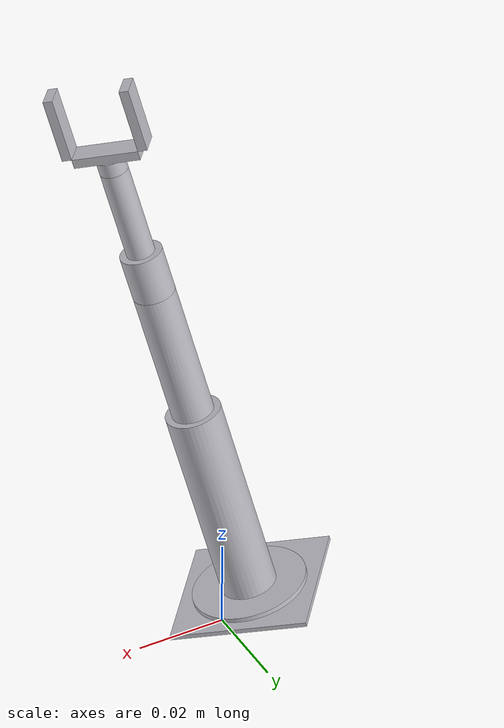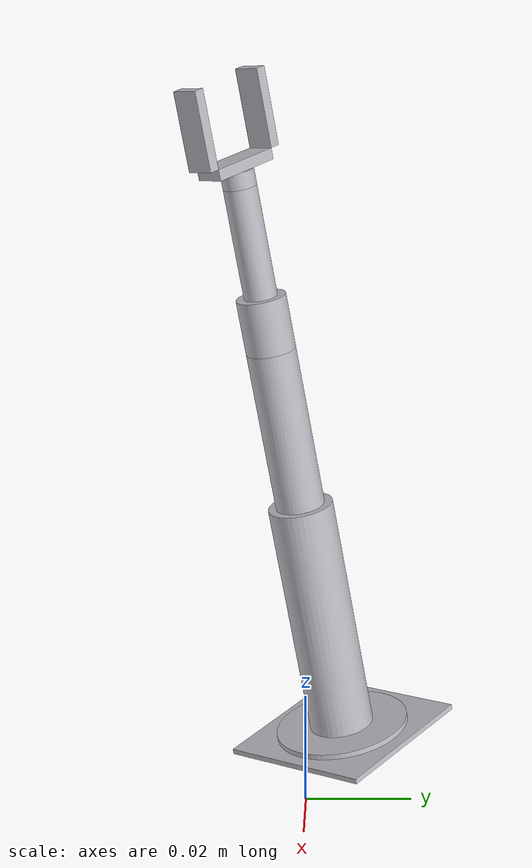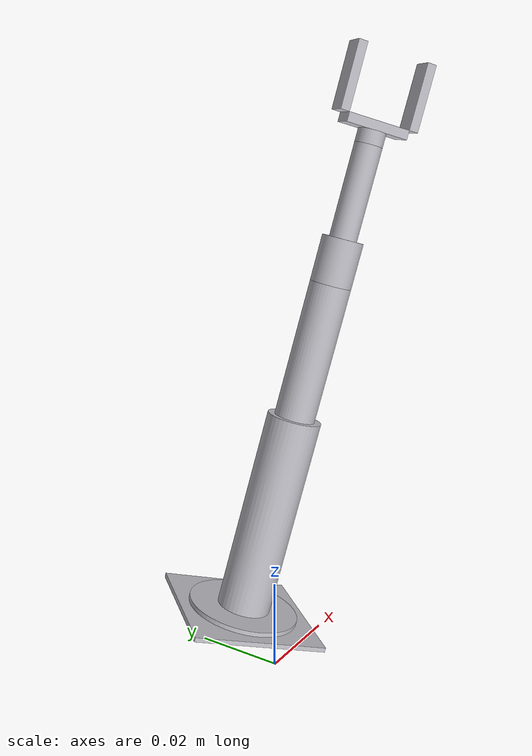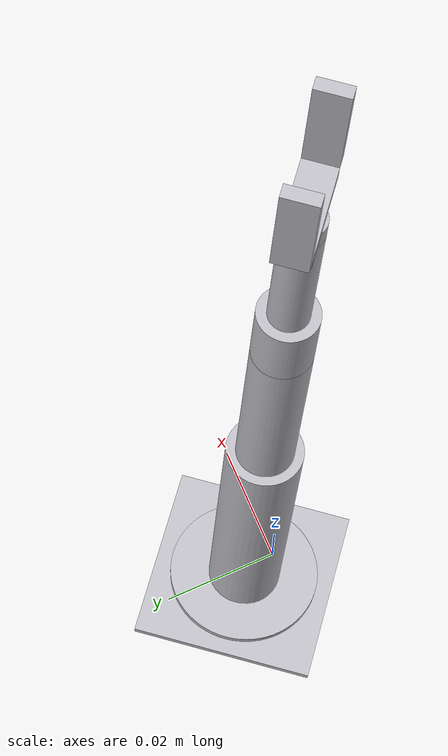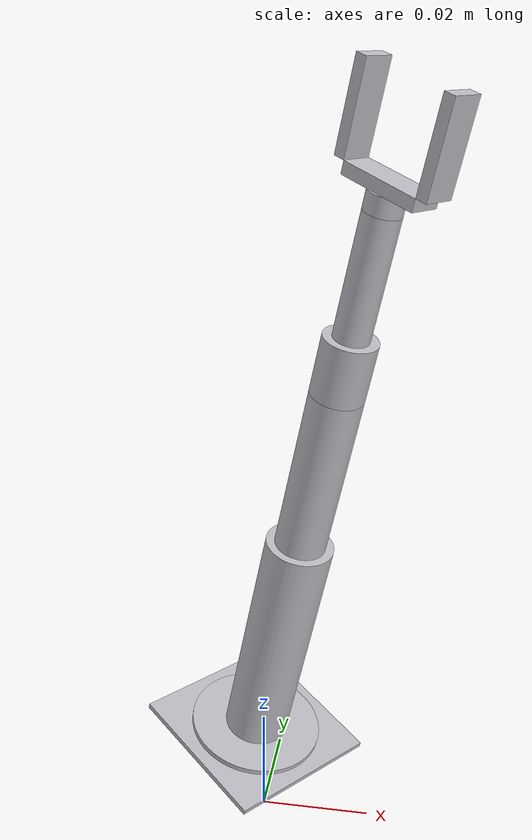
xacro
<?xml version="1.0" ?>
<robot name="urdf" xmlns:xacro="http://www.ros.org/wiki/xacro">

<xacro:include filename="$(find urdf_description)/urdf/materials.xacro" />
<xacro:include filename="$(find urdf_description)/urdf/urdf.trans" />
<xacro:include filename="$(find urdf_description)/urdf/urdf.gazebo" />
<link name="base_link">
  <inertial>
    <origin xyz="0.03985319259232302 0.14561530496668795 0.3276395309974256" rpy="0 0 0"/>
    <mass value="7.0649999999999995"/>
    <inertia ixx="0.055296" iyy="0.054528" izz="0.102244" ixy="-0.001826" iyz="-0.008538" ixz="0.010521"/>
  </inertial>
  <visual>
    <origin xyz="0 0 0" rpy="0 0 0"/>
    <geometry>
      <mesh filename="package://urdf_description/meshes/base_link.stl" scale="0.001 0.001 0.001"/>
    </geometry>
    <material name="silver"/>
  </visual>
  <collision>
    <origin xyz="0 0 0" rpy="0 0 0"/>
    <geometry>
      <mesh filename="package://urdf_description/meshes/base_link.stl" scale="0.001 0.001 0.001"/>
    </geometry>
  </collision>
</link>

<link name="Component3_2">
  <inertial>
    <origin xyz="0.001030908111271038 -0.0008368077931213969 0.004820590213709397" rpy="0 0 0"/>
    <mass value="3.85335973916873"/>
    <inertia ixx="0.015723" iyy="0.015505" izz="0.029045" ixy="-0.000518" iyz="-0.002423" ixz="0.002986"/>
  </inertial>
  <visual>
    <origin xyz="-0.040884 -0.144779 -0.33246" rpy="0 0 0"/>
    <geometry>
      <mesh filename="package://urdf_description/meshes/Component3_2.stl" scale="0.001 0.001 0.001"/>
    </geometry>
    <material name="silver"/>
  </visual>
  <collision>
    <origin xyz="-0.040884 -0.144779 -0.33246" rpy="0 0 0"/>
    <geometry>
      <mesh filename="package://urdf_description/meshes/Component3_2.stl" scale="0.001 0.001 0.001"/>
    </geometry>
  </collision>
</link>

<link name="Component4_2">
  <inertial>
    <origin xyz="0.046388365047072916 -0.03764540126873843 0.216923952188236" rpy="0 0 0"/>
    <mass value="39.951633775701396"/>
    <inertia ixx="0.683011" iyy="0.692274" izz="0.116908" ixy="0.022016" iyz="0.10295" ixz="-0.126861"/>
  </inertial>
  <visual>
    <origin xyz="-0.042946 -0.143106 -0.342101" rpy="0 0 0"/>
    <geometry>
      <mesh filename="package://urdf_description/meshes/Component4_2.stl" scale="0.001 0.001 0.001"/>
    </geometry>
    <material name="silver"/>
  </visual>
  <collision>
    <origin xyz="-0.042946 -0.143106 -0.342101" rpy="0 0 0"/>
    <geometry>
      <mesh filename="package://urdf_description/meshes/Component4_2.stl" scale="0.001 0.001 0.001"/>
    </geometry>
  </collision>
</link>

<link name="Component10_2">
  <inertial>
    <origin xyz="0.030925697007619074 -0.025097129761591994 0.144615672798877" rpy="0 0 0"/>
    <mass value="14.981862665888025"/>
    <inertia ixx="0.115495" iyy="0.117015" izz="0.022556" ixy="0.003614" iyz="0.016902" ixz="-0.020827"/>
  </inertial>
  <visual>
    <origin xyz="-0.135723 -0.067816 -0.775949" rpy="0 0 0"/>
    <geometry>
      <mesh filename="package://urdf_description/meshes/Component10_2.stl" scale="0.001 0.001 0.001"/>
    </geometry>
    <material name="silver"/>
  </visual>
  <collision>
    <origin xyz="-0.135723 -0.067816 -0.775949" rpy="0 0 0"/>
    <geometry>
      <mesh filename="package://urdf_description/meshes/Component10_2.stl" scale="0.001 0.001 0.001"/>
    </geometry>
  </collision>
</link>

<link name="Component11_2">
  <inertial>
    <origin xyz="0.010309007386577668 -0.008365384957780612 0.04820485712455169" rpy="0 0 0"/>
    <mass value="4.9939542219626745"/>
    <inertia ixx="0.00662" iyy="0.006644" izz="0.005172" ixy="5.6e-05" iyz="0.000263" ixz="-0.000325"/>
  </inertial>
  <visual>
    <origin xyz="-0.197574 -0.017622 -1.065181" rpy="0 0 0"/>
    <geometry>
      <mesh filename="package://urdf_description/meshes/Component11_2.stl" scale="0.001 0.001 0.001"/>
    </geometry>
    <material name="silver"/>
  </visual>
  <collision>
    <origin xyz="-0.197574 -0.017622 -1.065181" rpy="0 0 0"/>
    <geometry>
      <mesh filename="package://urdf_description/meshes/Component11_2.stl" scale="0.001 0.001 0.001"/>
    </geometry>
  </collision>
</link>

<link name="Component6_2">
  <inertial>
    <origin xyz="0.020616740170797204 -0.016731076354922807 0.09641074536880923" rpy="0 0 0"/>
    <mass value="4.439070419522377"/>
    <inertia ixx="0.015209" iyy="0.015409" izz="0.00297" ixy="0.000476" iyz="0.002226" ixz="-0.002743"/>
  </inertial>
  <visual>
    <origin xyz="-0.218192 -0.000891 -1.161591" rpy="0 0 0"/>
    <geometry>
      <mesh filename="package://urdf_description/meshes/Component6_2.stl" scale="0.001 0.001 0.001"/>
    </geometry>
    <material name="silver"/>
  </visual>
  <collision>
    <origin xyz="-0.218192 -0.000891 -1.161591" rpy="0 0 0"/>
    <geometry>
      <mesh filename="package://urdf_description/meshes/Component6_2.stl" scale="0.001 0.001 0.001"/>
    </geometry>
  </collision>
</link>

<link name="Component9_2">
  <inertial>
    <origin xyz="0.0030924686386986644 -0.0025098730927320748 0.014461926356074795" rpy="0 0 0"/>
    <mass value="0.6658605629283566"/>
    <inertia ixx="0.000204" iyy="0.000203" izz="0.000293" ixy="-3e-06" iyz="-1.6e-05" ixz="2e-05"/>
  </inertial>
  <visual>
    <origin xyz="-0.259426 0.032571 -1.354412" rpy="0 0 0"/>
    <geometry>
      <mesh filename="package://urdf_description/meshes/Component9_2.stl" scale="0.001 0.001 0.001"/>
    </geometry>
    <material name="silver"/>
  </visual>
  <collision>
    <origin xyz="-0.259426 0.032571 -1.354412" rpy="0 0 0"/>
    <geometry>
      <mesh filename="package://urdf_description/meshes/Component9_2.stl" scale="0.001 0.001 0.001"/>
    </geometry>
  </collision>
</link>

<link name="Component7_2">
  <inertial>
    <origin xyz="0.0020617574360698443 -0.001672654992256814 0.009640574396790003" rpy="0 0 0"/>
    <mass value="1.099"/>
    <inertia ixx="0.000962" iyy="0.001259" izz="0.0019" ixy="0.000706" iyz="-0.000284" ixz="0.00035"/>
  </inertial>
  <visual>
    <origin xyz="-0.265611 0.037591 -1.383336" rpy="0 0 0"/>
    <geometry>
      <mesh filename="package://urdf_description/meshes/Component7_2.stl" scale="0.001 0.001 0.001"/>
    </geometry>
    <material name="silver"/>
  </visual>
  <collision>
    <origin xyz="-0.265611 0.037591 -1.383336" rpy="0 0 0"/>
    <geometry>
      <mesh filename="package://urdf_description/meshes/Component7_2.stl" scale="0.001 0.001 0.001"/>
    </geometry>
  </collision>
</link>

<link name="Component8_3">
  <inertial>
    <origin xyz="0.021917834604104403 -0.01778665639198286 0.06483261361714954" rpy="0 0 0"/>
    <mass value="1.099"/>
    <inertia ixx="0.001873" iyy="0.001859" izz="0.00039" ixy="-3.3e-05" iyz="0.000284" ixz="-0.00035"/>
  </inertial>
  <visual>
    <origin xyz="-0.322138 0.083463 -1.384031" rpy="0 0 0"/>
    <geometry>
      <mesh filename="package://urdf_description/meshes/Component8_3.stl" scale="0.001 0.001 0.001"/>
    </geometry>
    <material name="silver"/>
  </visual>
  <collision>
    <origin xyz="-0.322138 0.083463 -1.384031" rpy="0 0 0"/>
    <geometry>
      <mesh filename="package://urdf_description/meshes/Component8_3.stl" scale="0.001 0.001 0.001"/>
    </geometry>
  </collision>
</link>

<link name="Component8_5">
  <inertial>
    <origin xyz="0.006946128571203275 -0.005636457749483385 0.07014248263697742" rpy="0 0 0"/>
    <mass value="1.099"/>
    <inertia ixx="0.001873" iyy="0.001859" izz="0.00039" ixy="-3.3e-05" iyz="0.000284" ixz="-0.00035"/>
  </inertial>
  <visual>
    <origin xyz="-0.217331 -0.001589 -1.421204" rpy="0 0 0"/>
    <geometry>
      <mesh filename="package://urdf_description/meshes/Component8_5.stl" scale="0.001 0.001 0.001"/>
    </geometry>
    <material name="silver"/>
  </visual>
  <collision>
    <origin xyz="-0.217331 -0.001589 -1.421204" rpy="0 0 0"/>
    <geometry>
      <mesh filename="package://urdf_description/meshes/Component8_5.stl" scale="0.001 0.001 0.001"/>
    </geometry>
  </collision>
</link>

<joint name="Revolute 1" type="continuous">
  <origin xyz="0.040884 0.144779 0.33246" rpy="0 0 0"/>
  <parent link="base_link"/>
  <child link="Component3_2"/>
  <axis xyz="0.206172 -0.167311 0.964106"/>
</joint>

<joint name="Revolute 2" type="revolute">
  <origin xyz="0.002062 -0.001673 0.009641" rpy="0 0 0"/>
  <parent link="Component3_2"/>
  <child link="Component4_2"/>
  <axis xyz="-0.630132 -0.776488 -0.0"/>
  <limit upper="1.570796" lower="-1.570796" effort="100" velocity="100"/>
</joint>

<joint name="Revolute 3" type="revolute">
  <origin xyz="0.092777 -0.07529 0.433848" rpy="0 0 0"/>
  <parent link="Component4_2"/>
  <child link="Component10_2"/>
  <axis xyz="-0.630132 -0.776488 -0.0"/>
  <limit upper="1.570796" lower="-1.570796" effort="100" velocity="100"/>
</joint>

<joint name="Revolute 4" type="continuous">
  <origin xyz="0.061851 -0.050194 0.289232" rpy="0 0 0"/>
  <parent link="Component10_2"/>
  <child link="Component11_2"/>
  <axis xyz="0.206172 -0.167311 0.964106"/>
</joint>

<joint name="Revolute 5" type="revolute">
  <origin xyz="0.020618 -0.016731 0.09641" rpy="0 0 0"/>
  <parent link="Component11_2"/>
  <child link="Component6_2"/>
  <axis xyz="-0.748617 0.607514 0.265518"/>
  <limit upper="1.570796" lower="-1.570796" effort="100" velocity="100"/>
</joint>

<joint name="Revolute 6" type="continuous">
  <origin xyz="0.041234 -0.033462 0.192821" rpy="0 0 0"/>
  <parent link="Component6_2"/>
  <child link="Component9_2"/>
  <axis xyz="0.206172 -0.167311 0.964106"/>
</joint>

<joint name="Rigid 7" type="fixed">
  <origin xyz="0.006185 -0.00502 0.028924" rpy="0 0 0"/>
  <parent link="Component9_2"/>
  <child link="Component7_2"/>
</joint>

<joint name="Slider 8" type="prismatic">
  <origin xyz="0.056527 -0.045872 0.000695" rpy="0 0 0"/>
  <parent link="Component7_2"/>
  <child link="Component8_3"/>
  <axis xyz="-0.748617 0.607514 0.265518"/>
  <limit upper="0.06" lower="0.0" effort="100" velocity="100"/>
</joint>

<joint name="Slider 9" type="prismatic">
  <origin xyz="-0.04828 0.03918 0.037868" rpy="0 0 0"/>
  <parent link="Component7_2"/>
  <child link="Component8_5"/>
  <axis xyz="0.748617 -0.607514 -0.265518"/>
  <limit upper="0.06" lower="0.0" effort="100" velocity="100"/>
</joint>

</robot>

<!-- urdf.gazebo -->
<robot name="urdf" xmlns:xacro="http://www.ros.org/wiki/xacro" >

<xacro:property name="body_color" value="Gazebo/Silver" />

<gazebo>
  <plugin name="control" filename="libgazebo_ros_control.so"/>
</gazebo>
<gazebo reference="base_link">
  <material>${body_color}</material>
  <mu1>0.2</mu1>
  <mu2>0.2</mu2>
  <selfCollide>true</selfCollide>
  <gravity>true</gravity>
</gazebo>

<gazebo reference="Component3_2">
  <material>${body_color}</material>
  <mu1>0.2</mu1>
  <mu2>0.2</mu2>
  <selfCollide>true</selfCollide>
</gazebo>

<gazebo reference="Component4_2">
  <material>${body_color}</material>
  <mu1>0.2</mu1>
  <mu2>0.2</mu2>
  <selfCollide>true</selfCollide>
</gazebo>

<gazebo reference="Component10_2">
  <material>${body_color}</material>
  <mu1>0.2</mu1>
  <mu2>0.2</mu2>
  <selfCollide>true</selfCollide>
</gazebo>

<gazebo reference="Component11_2">
  <material>${body_color}</material>
  <mu1>0.2</mu1>
  <mu2>0.2</mu2>
  <selfCollide>true</selfCollide>
</gazebo>

<gazebo reference="Component6_2">
  <material>${body_color}</material>
  <mu1>0.2</mu1>
  <mu2>0.2</mu2>
  <selfCollide>true</selfCollide>
</gazebo>

<gazebo reference="Component9_2">
  <material>${body_color}</material>
  <mu1>0.2</mu1>
  <mu2>0.2</mu2>
  <selfCollide>true</selfCollide>
</gazebo>

<gazebo reference="Component7_2">
  <material>${body_color}</material>
  <mu1>0.2</mu1>
  <mu2>0.2</mu2>
  <selfCollide>true</selfCollide>
</gazebo>

<gazebo reference="Component8_3">
  <material>${body_color}</material>
  <mu1>0.2</mu1>
  <mu2>0.2</mu2>
  <selfCollide>true</selfCollide>
</gazebo>

<gazebo reference="Component8_5">
  <material>${body_color}</material>
  <mu1>0.2</mu1>
  <mu2>0.2</mu2>
  <selfCollide>true</selfCollide>
</gazebo>

</robot>
